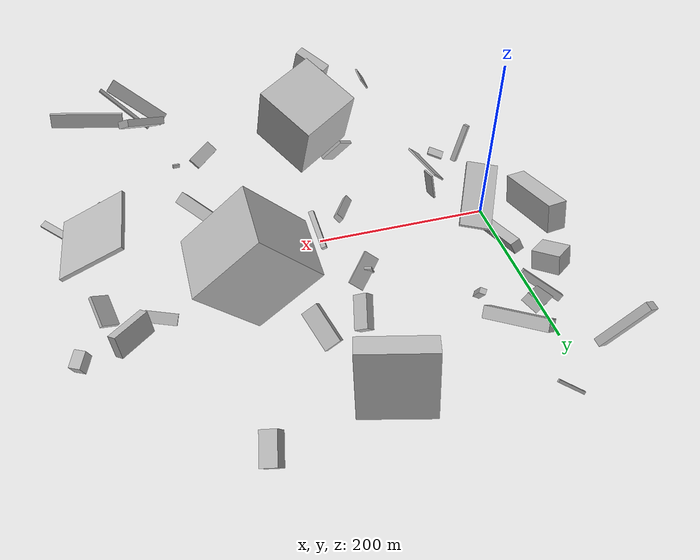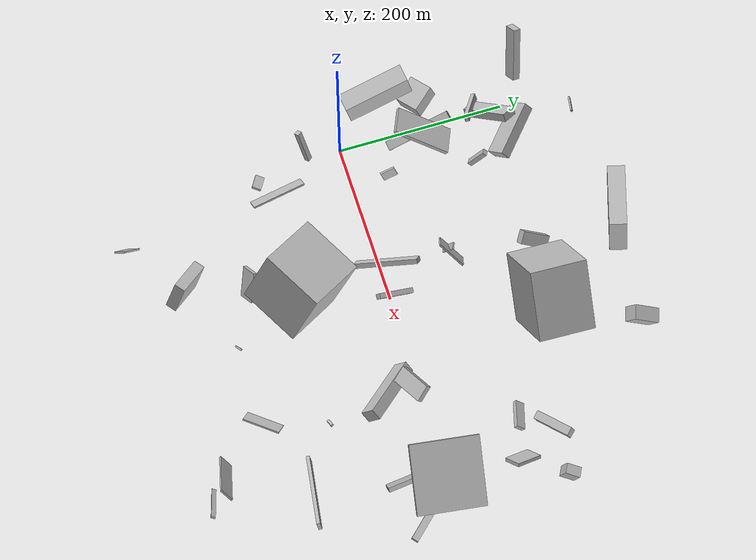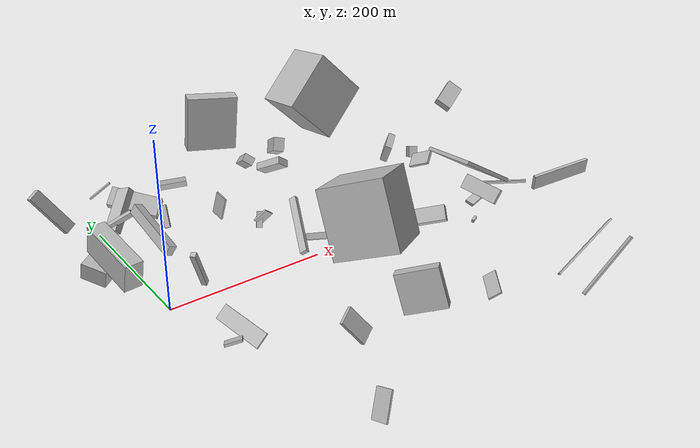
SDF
<sdf version="1.6">
 <world name="default">
  <scene>
   <sky><clouds><speed>12</speed></clouds></sky>
   <ambient>0.4 0.4 0.4 1</ambient>
   <background>0.7 0.7 0.7 1</background>
   <shadows>1</shadows>
  </scene>
  <gravity>0 0 -9.8066</gravity>
  <magnetic_field>6e-06 2.3e-05 -4.2e-05</magnetic_field>
  <physics default="0" name="default_physics" type="ode">
   <ode>
    <solver>
     <type>quick</type>
     <iters>10</iters>
     <sor>1.0</sor>
     <use_dynamic_moi_rescaling>0</use_dynamic_moi_rescaling>
    </solver>
    <constraints>
     <cfm>0</cfm>
     <erp>0.2</erp>
     <contact_max_correcting_vel>100</contact_max_correcting_vel>
     <contact_surface_layer>0.001</contact_surface_layer>
    </constraints>
   </ode>
   <max_step_size>0.004</max_step_size>
   <real_time_factor>1</real_time_factor>
   <real_time_update_rate>250</real_time_update_rate>
  </physics>
  <light name="sun" type="directional">
   <pose>0 0 10 0 0 0</pose>
   <diffuse>0.8 0.8 0.8 1</diffuse>
   <specular>0.2 0.2 0.2 1</specular>
   <attenuation>
    <range>1000</range>
    <constant>0.9</constant>
    <linear>0.01</linear>
    <quadratic>0.001</quadratic>
   </attenuation>
   <direction>-0.5 0.1 -0.9</direction>
  </light>
  <model name="building_1">
   <static>0</static>
   <pose>211.83509465586732 -188.12148826818972 20.800096740713983 1.718569757631835 1.211694147914799 2.4032641904682697</pose>
   <link name="link">
    <gravity>0</gravity>
    <pose>0 0 4.0 0 0 0</pose>
    <collision name="collision"><geometry><box><size>5 2 8</size></box></geometry></collision>
    <visual name="visual">
     <cast_shadows>0</cast_shadows>
     <geometry><box><size>5 2 8</size></box></geometry>
     <material>
      <script>
       <uri>model://HANNAS_wall/materials/scripts</uri>
       <uri>model://HANNAS_wall/materials/textures</uri>
       <name>vrc/HANNAS_wall</name>
      </script>
     </material>
    </visual>
   </link>
  </model>
  <model name="building_2">
   <static>0</static>
   <pose>234.80237400220707 164.78939845435656 53.92079740940968 2.462213911589305 -0.7776903398706622 0.9043381538701816</pose>
   <link name="link">
    <gravity>0</gravity>
    <pose>0 0 9.0 0 0 0</pose>
    <collision name="collision"><geometry><box><size>10 42 18</size></box></geometry></collision>
    <visual name="visual">
     <cast_shadows>0</cast_shadows>
     <geometry><box><size>10 42 18</size></box></geometry>
     <material>
      <script>
       <uri>model://HANNAS_wall/materials/scripts</uri>
       <uri>model://HANNAS_wall/materials/textures</uri>
       <name>vrc/HANNAS_wall</name>
      </script>
     </material>
    </visual>
   </link>
  </model>
  <model name="building_3">
   <static>0</static>
   <pose>341.77539701507374 -116.71835752920873 53.05635060884733 1.330306810678568 -0.12214779300974828 1.93714463204374</pose>
   <link name="link">
    <gravity>0</gravity>
    <pose>0 0 4.0 0 0 0</pose>
    <collision name="collision"><geometry><box><size>3 4 8</size></box></geometry></collision>
    <visual name="visual">
     <cast_shadows>0</cast_shadows>
     <geometry><box><size>3 4 8</size></box></geometry>
     <material>
      <script>
       <uri>model://HANNAS_wall/materials/scripts</uri>
       <uri>model://HANNAS_wall/materials/textures</uri>
       <name>vrc/HANNAS_wall</name>
      </script>
     </material>
    </visual>
   </link>
  </model>
  <model name="building_4">
   <static>0</static>
   <pose>32.333371117048024 275.0391424913804 25.68430537030435 2.6780549057812904 0.5984060693380213 2.8780264542740563</pose>
   <link name="link">
    <gravity>0</gravity>
    <pose>0 0 1.5 0 0 0</pose>
    <collision name="collision"><geometry><box><size>34 2 3</size></box></geometry></collision>
    <visual name="visual">
     <cast_shadows>0</cast_shadows>
     <geometry><box><size>34 2 3</size></box></geometry>
     <material>
      <script>
       <uri>model://HANNAS_wall/materials/scripts</uri>
       <uri>model://HANNAS_wall/materials/textures</uri>
       <name>vrc/HANNAS_wall</name>
      </script>
     </material>
    </visual>
   </link>
  </model>
  <model name="building_5">
   <static>0</static>
   <pose>199.49956365312397 155.68651916010558 71.8265504030798 2.317830625721731 0.7570839382661885 -2.8142826680552564</pose>
   <link name="link">
    <gravity>0</gravity>
    <pose>0 0 17.0 0 0 0</pose>
    <collision name="collision"><geometry><box><size>11 15 34</size></box></geometry></collision>
    <visual name="visual">
     <cast_shadows>0</cast_shadows>
     <geometry><box><size>11 15 34</size></box></geometry>
     <material>
      <script>
       <uri>model://HANNAS_wall/materials/scripts</uri>
       <uri>model://HANNAS_wall/materials/textures</uri>
       <name>vrc/HANNAS_wall</name>
      </script>
     </material>
    </visual>
   </link>
  </model>
  <model name="building_6">
   <static>0</static>
   <pose>434.08217490199263 137.46587995779066 48.29822114553718 -1.6569459412901066 -0.3010656879125149 2.3268298640024043</pose>
   <link name="link">
    <gravity>0</gravity>
    <pose>0 0 21.5 0 0 0</pose>
    <collision name="collision"><geometry><box><size>10 24 43</size></box></geometry></collision>
    <visual name="visual">
     <cast_shadows>0</cast_shadows>
     <geometry><box><size>10 24 43</size></box></geometry>
     <material>
      <script>
       <uri>model://HANNAS_wall/materials/scripts</uri>
       <uri>model://HANNAS_wall/materials/textures</uri>
       <name>vrc/HANNAS_wall</name>
      </script>
     </material>
    </visual>
   </link>
  </model>
  <model name="building_7">
   <static>0</static>
   <pose>274.420622655176 149.70831146967672 116.23090418437597 -0.14218445648207004 0.7519957077774505 -0.09363521115893546</pose>
   <link name="link">
    <gravity>0</gravity>
    <pose>0 0 40.0 0 0 0</pose>
    <collision name="collision"><geometry><box><size>80 65 80</size></box></geometry></collision>
    <visual name="visual">
     <cast_shadows>0</cast_shadows>
     <geometry><box><size>80 65 80</size></box></geometry>
     <material>
      <script>
       <uri>model://HANNAS_wall/materials/scripts</uri>
       <uri>model://HANNAS_wall/materials/textures</uri>
       <name>vrc/HANNAS_wall</name>
      </script>
     </material>
    </visual>
   </link>
  </model>
  <model name="building_8">
   <static>0</static>
   <pose>-34.328476402679115 51.59412894892063 70.20308342258983 -3.121896601542906 -0.20296781385643453 1.6864225873567924</pose>
   <link name="link">
    <gravity>0</gravity>
    <pose>0 0 17.0 0 0 0</pose>
    <collision name="collision"><geometry><box><size>80 22 34</size></box></geometry></collision>
    <visual name="visual">
     <cast_shadows>0</cast_shadows>
     <geometry><box><size>80 22 34</size></box></geometry>
     <material>
      <script>
       <uri>model://HANNAS_wall/materials/scripts</uri>
       <uri>model://HANNAS_wall/materials/textures</uri>
       <name>vrc/HANNAS_wall</name>
      </script>
     </material>
    </visual>
   </link>
  </model>
  <model name="building_9">
   <static>0</static>
   <pose>181.0722514932964 79.79425615290168 31.046599556770524 -2.4199227432310715 0.5819782091448179 0.7197459468379107</pose>
   <link name="link">
    <gravity>0</gravity>
    <pose>0 0 9.5 0 0 0</pose>
    <collision name="collision"><geometry><box><size>38 2 19</size></box></geometry></collision>
    <visual name="visual">
     <cast_shadows>0</cast_shadows>
     <geometry><box><size>38 2 19</size></box></geometry>
     <material>
      <script>
       <uri>model://HANNAS_wall/materials/scripts</uri>
       <uri>model://HANNAS_wall/materials/textures</uri>
       <name>vrc/HANNAS_wall</name>
      </script>
     </material>
    </visual>
   </link>
  </model>
  <model name="building_10">
   <static>0</static>
   <pose>239.48999391752747 258.00621602477725 87.11358322419078 1.5100823951984188 0.08246639606584256 -1.873167391303168</pose>
   <link name="link">
    <gravity>0</gravity>
    <pose>0 0 35.5 0 0 0</pose>
    <collision name="collision"><geometry><box><size>20 80 71</size></box></geometry></collision>
    <visual name="visual">
     <cast_shadows>0</cast_shadows>
     <geometry><box><size>20 80 71</size></box></geometry>
     <material>
      <script>
       <uri>model://HANNAS_wall/materials/scripts</uri>
       <uri>model://HANNAS_wall/materials/textures</uri>
       <name>vrc/HANNAS_wall</name>
      </script>
     </material>
    </visual>
   </link>
  </model>
  <model name="building_11">
   <static>0</static>
   <pose>86.89895705027148 25.51184188530384 85.88333165499697 -0.4255661570825047 -1.323496827098687 -1.0420962873601276</pose>
   <link name="link">
    <gravity>0</gravity>
    <pose>0 0 8.5 0 0 0</pose>
    <collision name="collision"><geometry><box><size>27 2 17</size></box></geometry></collision>
    <visual name="visual">
     <cast_shadows>0</cast_shadows>
     <geometry><box><size>27 2 17</size></box></geometry>
     <material>
      <script>
       <uri>model://HANNAS_wall/materials/scripts</uri>
       <uri>model://HANNAS_wall/materials/textures</uri>
       <name>vrc/HANNAS_wall</name>
      </script>
     </material>
    </visual>
   </link>
  </model>
  <model name="building_12">
   <static>0</static>
   <pose>-46.192846115712406 117.67783680504236 17.13693045531548 2.6090554370318157 1.2784223373500287 1.6919858048443226</pose>
   <link name="link">
    <gravity>0</gravity>
    <pose>0 0 16.0 0 0 0</pose>
    <collision name="collision"><geometry><box><size>23 29 32</size></box></geometry></collision>
    <visual name="visual">
     <cast_shadows>0</cast_shadows>
     <geometry><box><size>23 29 32</size></box></geometry>
     <material>
      <script>
       <uri>model://HANNAS_wall/materials/scripts</uri>
       <uri>model://HANNAS_wall/materials/textures</uri>
       <name>vrc/HANNAS_wall</name>
      </script>
     </material>
    </visual>
   </link>
  </model>
  <model name="building_13">
   <static>0</static>
   <pose>21.04787603662203 -101.28689144103191 13.347558112208695 1.2896284914344387 -0.26449627644728013 -0.4981593179083564</pose>
   <link name="link">
    <gravity>0</gravity>
    <pose>0 0 5.5 0 0 0</pose>
    <collision name="collision"><geometry><box><size>19 3 11</size></box></geometry></collision>
    <visual name="visual">
     <cast_shadows>0</cast_shadows>
     <geometry><box><size>19 3 11</size></box></geometry>
     <material>
      <script>
       <uri>model://HANNAS_wall/materials/scripts</uri>
       <uri>model://HANNAS_wall/materials/textures</uri>
       <name>vrc/HANNAS_wall</name>
      </script>
     </material>
    </visual>
   </link>
  </model>
  <model name="building_14">
   <static>0</static>
   <pose>29.347209644425803 50.544472300632975 39.56397762175509 0.8834882533307634 1.0686296173164236 2.596280416809086</pose>
   <link name="link">
    <gravity>0</gravity>
    <pose>0 0 40.0 0 0 0</pose>
    <collision name="collision"><geometry><box><size>13 11 80</size></box></geometry></collision>
    <visual name="visual">
     <cast_shadows>0</cast_shadows>
     <geometry><box><size>13 11 80</size></box></geometry>
     <material>
      <script>
       <uri>model://HANNAS_wall/materials/scripts</uri>
       <uri>model://HANNAS_wall/materials/textures</uri>
       <name>vrc/HANNAS_wall</name>
      </script>
     </material>
    </visual>
   </link>
  </model>
  <model name="building_15">
   <static>0</static>
   <pose>202.69092912412384 2.413407660275681 19.42432674832134 0.48421519403008223 -0.34386689150334065 3.0721616998070744</pose>
   <link name="link">
    <gravity>0</gravity>
    <pose>0 0 4.0 0 0 0</pose>
    <collision name="collision"><geometry><box><size>6 46 8</size></box></geometry></collision>
    <visual name="visual">
     <cast_shadows>0</cast_shadows>
     <geometry><box><size>6 46 8</size></box></geometry>
     <material>
      <script>
       <uri>model://HANNAS_wall/materials/scripts</uri>
       <uri>model://HANNAS_wall/materials/textures</uri>
       <name>vrc/HANNAS_wall</name>
      </script>
     </material>
    </visual>
   </link>
  </model>
  <model name="building_16">
   <static>0</static>
   <pose>322.84648781972226 -35.29411744718839 38.17293922593068 2.468730497043652 -0.281682167188696 -0.809478724981885</pose>
   <link name="link">
    <gravity>0</gravity>
    <pose>0 0 9.5 0 0 0</pose>
    <collision name="collision"><geometry><box><size>80 14 19</size></box></geometry></collision>
    <visual name="visual">
     <cast_shadows>0</cast_shadows>
     <geometry><box><size>80 14 19</size></box></geometry>
     <material>
      <script>
       <uri>model://HANNAS_wall/materials/scripts</uri>
       <uri>model://HANNAS_wall/materials/textures</uri>
       <name>vrc/HANNAS_wall</name>
      </script>
     </material>
    </visual>
   </link>
  </model>
  <model name="building_17">
   <static>0</static>
   <pose>71.24111922285906 149.95639512187734 27.6721881899729 -0.3943312881999136 -0.9567348629258922 1.3570314581930667</pose>
   <link name="link">
    <gravity>0</gravity>
    <pose>0 0 3.0 0 0 0</pose>
    <collision name="collision"><geometry><box><size>29 7 6</size></box></geometry></collision>
    <visual name="visual">
     <cast_shadows>0</cast_shadows>
     <geometry><box><size>29 7 6</size></box></geometry>
     <material>
      <script>
       <uri>model://HANNAS_wall/materials/scripts</uri>
       <uri>model://HANNAS_wall/materials/textures</uri>
       <name>vrc/HANNAS_wall</name>
      </script>
     </material>
    </visual>
   </link>
  </model>
  <model name="building_18">
   <static>0</static>
   <pose>138.96781363739788 -211.6892133074876 82.96463509724086 1.2403536483466258 0.16280436606518386 0.6936798854298448</pose>
   <link name="link">
    <gravity>0</gravity>
    <pose>0 0 21.5 0 0 0</pose>
    <collision name="collision"><geometry><box><size>13 41 43</size></box></geometry></collision>
    <visual name="visual">
     <cast_shadows>0</cast_shadows>
     <geometry><box><size>13 41 43</size></box></geometry>
     <material>
      <script>
       <uri>model://HANNAS_wall/materials/scripts</uri>
       <uri>model://HANNAS_wall/materials/textures</uri>
       <name>vrc/HANNAS_wall</name>
      </script>
     </material>
    </visual>
   </link>
  </model>
  <model name="building_19">
   <static>0</static>
   <pose>159.83279928347687 -121.72645733542372 112.43484729288713 2.082656512462512 -1.1767746794497334 1.6325245232747774</pose>
   <link name="link">
    <gravity>0</gravity>
    <pose>0 0 37.5 0 0 0</pose>
    <collision name="collision"><geometry><box><size>80 75 75</size></box></geometry></collision>
    <visual name="visual">
     <cast_shadows>0</cast_shadows>
     <geometry><box><size>80 75 75</size></box></geometry>
     <material>
      <script>
       <uri>model://HANNAS_wall/materials/scripts</uri>
       <uri>model://HANNAS_wall/materials/textures</uri>
       <name>vrc/HANNAS_wall</name>
      </script>
     </material>
    </visual>
   </link>
  </model>
  <model name="building_20">
   <static>0</static>
   <pose>66.08185906298172 -275.9490569206119 32.3147454823486 0.6333188181223542 0.9231308915776146 -2.5022285020430988</pose>
   <link name="link">
    <gravity>0</gravity>
    <pose>0 0 1.0 0 0 0</pose>
    <collision name="collision"><geometry><box><size>29 19 2</size></box></geometry></collision>
    <visual name="visual">
     <cast_shadows>0</cast_shadows>
     <geometry><box><size>29 19 2</size></box></geometry>
     <material>
      <script>
       <uri>model://HANNAS_wall/materials/scripts</uri>
       <uri>model://HANNAS_wall/materials/textures</uri>
       <name>vrc/HANNAS_wall</name>
      </script>
     </material>
    </visual>
   </link>
  </model>
  <model name="building_21">
   <static>0</static>
   <pose>435.512153301948 -161.89601277875929 105.83971465665672 -1.454672528340893 -0.075752305100025 -0.14458742294338603</pose>
   <link name="link">
    <gravity>0</gravity>
    <pose>0 0 2.0 0 0 0</pose>
    <collision name="collision"><geometry><box><size>80 17 4</size></box></geometry></collision>
    <visual name="visual">
     <cast_shadows>0</cast_shadows>
     <geometry><box><size>80 17 4</size></box></geometry>
     <material>
      <script>
       <uri>model://HANNAS_wall/materials/scripts</uri>
       <uri>model://HANNAS_wall/materials/textures</uri>
       <name>vrc/HANNAS_wall</name>
      </script>
     </material>
    </visual>
   </link>
  </model>
  <model name="building_22">
   <static>0</static>
   <pose>16.755843127487054 -50.30728033604264 71.31984135569613 -1.6529932212902911 -0.35509957225501976 0.6803089918200894</pose>
   <link name="link">
    <gravity>0</gravity>
    <pose>0 0 3.0 0 0 0</pose>
    <collision name="collision"><geometry><box><size>6 46 6</size></box></geometry></collision>
    <visual name="visual">
     <cast_shadows>0</cast_shadows>
     <geometry><box><size>6 46 6</size></box></geometry>
     <material>
      <script>
       <uri>model://HANNAS_wall/materials/scripts</uri>
       <uri>model://HANNAS_wall/materials/textures</uri>
       <name>vrc/HANNAS_wall</name>
      </script>
     </material>
    </visual>
   </link>
  </model>
  <model name="building_23">
   <static>0</static>
   <pose>302.38111074100397 -179.75034528123692 7.965016157606648 0.9398302659688144 -0.019967656200733767 0.8866075359218762</pose>
   <link name="link">
    <gravity>0</gravity>
    <pose>0 0 8.0 0 0 0</pose>
    <collision name="collision"><geometry><box><size>44 2 16</size></box></geometry></collision>
    <visual name="visual">
     <cast_shadows>0</cast_shadows>
     <geometry><box><size>44 2 16</size></box></geometry>
     <material>
      <script>
       <uri>model://HANNAS_wall/materials/scripts</uri>
       <uri>model://HANNAS_wall/materials/textures</uri>
       <name>vrc/HANNAS_wall</name>
      </script>
     </material>
    </visual>
   </link>
  </model>
  <model name="building_24">
   <static>0</static>
   <pose>447.0619530766014 -11.73320498308987 32.433403920001076 -1.0829770079596526 1.2957883835320363 -1.8960973042229483</pose>
   <link name="link">
    <gravity>0</gravity>
    <pose>0 0 38.0 0 0 0</pose>
    <collision name="collision"><geometry><box><size>3 8 76</size></box></geometry></collision>
    <visual name="visual">
     <cast_shadows>0</cast_shadows>
     <geometry><box><size>3 8 76</size></box></geometry>
     <material>
      <script>
       <uri>model://HANNAS_wall/materials/scripts</uri>
       <uri>model://HANNAS_wall/materials/textures</uri>
       <name>vrc/HANNAS_wall</name>
      </script>
     </material>
    </visual>
   </link>
  </model>
  <model name="building_25">
   <static>0</static>
   <pose>429.04597882476725 -48.91855937367036 44.29611155028419 -2.1313893349846835 0.0702182002502703 -1.4871561337977943</pose>
   <link name="link">
    <gravity>0</gravity>
    <pose>0 0 2.5 0 0 0</pose>
    <collision name="collision"><geometry><box><size>55 20 5</size></box></geometry></collision>
    <visual name="visual">
     <cast_shadows>0</cast_shadows>
     <geometry><box><size>55 20 5</size></box></geometry>
     <material>
      <script>
       <uri>model://HANNAS_wall/materials/scripts</uri>
       <uri>model://HANNAS_wall/materials/textures</uri>
       <name>vrc/HANNAS_wall</name>
      </script>
     </material>
    </visual>
   </link>
  </model>
  <model name="building_26">
   <static>0</static>
   <pose>466.1944518994228 118.8144575594521 29.092904337486033 1.9661760357144618 -0.029713998100183492 2.6496832258925993</pose>
   <link name="link">
    <gravity>0</gravity>
    <pose>0 0 9.0 0 0 0</pose>
    <collision name="collision"><geometry><box><size>12 16 18</size></box></geometry></collision>
    <visual name="visual">
     <cast_shadows>0</cast_shadows>
     <geometry><box><size>12 16 18</size></box></geometry>
     <material>
      <script>
       <uri>model://HANNAS_wall/materials/scripts</uri>
       <uri>model://HANNAS_wall/materials/textures</uri>
       <name>vrc/HANNAS_wall</name>
      </script>
     </material>
    </visual>
   </link>
  </model>
  <model name="building_27">
   <static>0</static>
   <pose>437.9674115163174 -26.765160375659217 20.869765631830226 -1.8362898884201577 0.22839703908871667 -2.998471066718008</pose>
   <link name="link">
    <gravity>0</gravity>
    <pose>0 0 6.0 0 0 0</pose>
    <collision name="collision"><geometry><box><size>24 4 12</size></box></geometry></collision>
    <visual name="visual">
     <cast_shadows>0</cast_shadows>
     <geometry><box><size>24 4 12</size></box></geometry>
     <material>
      <script>
       <uri>model://HANNAS_wall/materials/scripts</uri>
       <uri>model://HANNAS_wall/materials/textures</uri>
       <name>vrc/HANNAS_wall</name>
      </script>
     </material>
    </visual>
   </link>
  </model>
  <model name="building_28">
   <static>0</static>
   <pose>126.8625591733284 -146.6605548966384 25.075777443932783 2.6172846902536056 0.4573624178406294 1.7564089781586765</pose>
   <link name="link">
    <gravity>0</gravity>
    <pose>0 0 19.0 0 0 0</pose>
    <collision name="collision"><geometry><box><size>4 21 38</size></box></geometry></collision>
    <visual name="visual">
     <cast_shadows>0</cast_shadows>
     <geometry><box><size>4 21 38</size></box></geometry>
     <material>
      <script>
       <uri>model://HANNAS_wall/materials/scripts</uri>
       <uri>model://HANNAS_wall/materials/textures</uri>
       <name>vrc/HANNAS_wall</name>
      </script>
     </material>
    </visual>
   </link>
  </model>
  <model name="building_29">
   <static>0</static>
   <pose>396.068709382218 -262.52237429662364 46.16666670684935 1.225578049336167 -0.8474520839373084 -0.2229625520671296</pose>
   <link name="link">
    <gravity>0</gravity>
    <pose>0 0 2.5 0 0 0</pose>
    <collision name="collision"><geometry><box><size>80 2 5</size></box></geometry></collision>
    <visual name="visual">
     <cast_shadows>0</cast_shadows>
     <geometry><box><size>80 2 5</size></box></geometry>
     <material>
      <script>
       <uri>model://HANNAS_wall/materials/scripts</uri>
       <uri>model://HANNAS_wall/materials/textures</uri>
       <name>vrc/HANNAS_wall</name>
      </script>
     </material>
    </visual>
   </link>
  </model>
  <model name="building_30">
   <static>0</static>
   <pose>441.4989442060214 79.08550018686107 38.946927939434204 2.591082594587035 -0.6036463974775729 0.5732321256401331</pose>
   <link name="link">
    <gravity>0</gravity>
    <pose>0 0 2.0 0 0 0</pose>
    <collision name="collision"><geometry><box><size>22 33 4</size></box></geometry></collision>
    <visual name="visual">
     <cast_shadows>0</cast_shadows>
     <geometry><box><size>22 33 4</size></box></geometry>
     <material>
      <script>
       <uri>model://HANNAS_wall/materials/scripts</uri>
       <uri>model://HANNAS_wall/materials/textures</uri>
       <name>vrc/HANNAS_wall</name>
      </script>
     </material>
    </visual>
   </link>
  </model>
  <model name="building_31">
   <static>0</static>
   <pose>25.73540280579789 170.23947846184123 41.9991625797291 2.081394597267653 -0.889098594475463 -2.9976129007846293</pose>
   <link name="link">
    <gravity>0</gravity>
    <pose>0 0 9.5 0 0 0</pose>
    <collision name="collision"><geometry><box><size>10 62 19</size></box></geometry></collision>
    <visual name="visual">
     <cast_shadows>0</cast_shadows>
     <geometry><box><size>10 62 19</size></box></geometry>
     <material>
      <script>
       <uri>model://HANNAS_wall/materials/scripts</uri>
       <uri>model://HANNAS_wall/materials/textures</uri>
       <name>vrc/HANNAS_wall</name>
      </script>
     </material>
    </visual>
   </link>
  </model>
  <model name="building_32">
   <static>0</static>
   <pose>53.91473218707155 85.33886066786802 106.882496415651 2.6133799775774134 -0.09183787442207908 -0.4054767215956753</pose>
   <link name="link">
    <gravity>0</gravity>
    <pose>0 0 2.5 0 0 0</pose>
    <collision name="collision"><geometry><box><size>32 70 5</size></box></geometry></collision>
    <visual name="visual">
     <cast_shadows>0</cast_shadows>
     <geometry><box><size>32 70 5</size></box></geometry>
     <material>
      <script>
       <uri>model://HANNAS_wall/materials/scripts</uri>
       <uri>model://HANNAS_wall/materials/textures</uri>
       <name>vrc/HANNAS_wall</name>
      </script>
     </material>
    </visual>
   </link>
  </model>
  <model name="building_33">
   <static>0</static>
   <pose>38.58087065748222 -87.79609711913471 13.785708262254236 -0.7237252379241974 -0.06115353293215475 1.7272222761047562</pose>
   <link name="link">
    <gravity>0</gravity>
    <pose>0 0 1.0 0 0 0</pose>
    <collision name="collision"><geometry><box><size>65 18 2</size></box></geometry></collision>
    <visual name="visual">
     <cast_shadows>0</cast_shadows>
     <geometry><box><size>65 18 2</size></box></geometry>
     <material>
      <script>
       <uri>model://HANNAS_wall/materials/scripts</uri>
       <uri>model://HANNAS_wall/materials/textures</uri>
       <name>vrc/HANNAS_wall</name>
      </script>
     </material>
    </visual>
   </link>
  </model>
  <model name="building_34">
   <static>0</static>
   <pose>374.3900669909706 -27.880492120749047 175.21632050581428 0.5911973481641073 -0.3285941127829142 0.4247421500360017</pose>
   <link name="link">
    <gravity>0</gravity>
    <pose>0 0 3.5 0 0 0</pose>
    <collision name="collision"><geometry><box><size>40 19 7</size></box></geometry></collision>
    <visual name="visual">
     <cast_shadows>0</cast_shadows>
     <geometry><box><size>40 19 7</size></box></geometry>
     <material>
      <script>
       <uri>model://HANNAS_wall/materials/scripts</uri>
       <uri>model://HANNAS_wall/materials/textures</uri>
       <name>vrc/HANNAS_wall</name>
      </script>
     </material>
    </visual>
   </link>
  </model>
  <model name="building_35">
   <static>0</static>
   <pose>57.07332700753149 200.22889795966077 43.55490287703706 -2.311417307397439 -0.19904813537044502 2.393781248964621</pose>
   <link name="link">
    <gravity>0</gravity>
    <pose>0 0 12.5 0 0 0</pose>
    <collision name="collision"><geometry><box><size>66 13 25</size></box></geometry></collision>
    <visual name="visual">
     <cast_shadows>0</cast_shadows>
     <geometry><box><size>66 13 25</size></box></geometry>
     <material>
      <script>
       <uri>model://HANNAS_wall/materials/scripts</uri>
       <uri>model://HANNAS_wall/materials/textures</uri>
       <name>vrc/HANNAS_wall</name>
      </script>
     </material>
    </visual>
   </link>
  </model>
  <model name="building_36">
   <static>0</static>
   <pose>-64.89879188247353 235.1304042961198 63.72921182567052 2.801140683795062 -0.4940020383967565 0.35948328951487674</pose>
   <link name="link">
    <gravity>0</gravity>
    <pose>0 0 33.0 0 0 0</pose>
    <collision name="collision"><geometry><box><size>16 9 66</size></box></geometry></collision>
    <visual name="visual">
     <cast_shadows>0</cast_shadows>
     <geometry><box><size>16 9 66</size></box></geometry>
     <material>
      <script>
       <uri>model://HANNAS_wall/materials/scripts</uri>
       <uri>model://HANNAS_wall/materials/textures</uri>
       <name>vrc/HANNAS_wall</name>
      </script>
     </material>
    </visual>
   </link>
  </model>
  <model name="building_37">
   <static>0</static>
   <pose>4.733777188483359 158.32380796078175 38.051223060072445 -2.678751172787777 -0.538683663652296 -0.5301849422743659</pose>
   <link name="link">
    <gravity>0</gravity>
    <pose>0 0 4.0 0 0 0</pose>
    <collision name="collision"><geometry><box><size>51 5 8</size></box></geometry></collision>
    <visual name="visual">
     <cast_shadows>0</cast_shadows>
     <geometry><box><size>51 5 8</size></box></geometry>
     <material>
      <script>
       <uri>model://HANNAS_wall/materials/scripts</uri>
       <uri>model://HANNAS_wall/materials/textures</uri>
       <name>vrc/HANNAS_wall</name>
      </script>
     </material>
    </visual>
   </link>
  </model>
  <model name="building_38">
   <static>0</static>
   <pose>391.3255809018561 96.68693072395786 22.37489311355526 -0.8813847129409444 0.15154446068719465 2.857163110011402</pose>
   <link name="link">
    <gravity>0</gravity>
    <pose>0 0 6.0 0 0 0</pose>
    <collision name="collision"><geometry><box><size>33 5 12</size></box></geometry></collision>
    <visual name="visual">
     <cast_shadows>0</cast_shadows>
     <geometry><box><size>33 5 12</size></box></geometry>
     <material>
      <script>
       <uri>model://HANNAS_wall/materials/scripts</uri>
       <uri>model://HANNAS_wall/materials/textures</uri>
       <name>vrc/HANNAS_wall</name>
      </script>
     </material>
    </visual>
   </link>
  </model>
  <model name="building_39">
   <static>0</static>
   <pose>164.04377063162832 76.10419536672634 14.762333725851281 0.16094480699170313 0.564585084379903 1.240051625151928</pose>
   <link name="link">
    <gravity>0</gravity>
    <pose>0 0 10.5 0 0 0</pose>
    <collision name="collision"><geometry><box><size>2 8 21</size></box></geometry></collision>
    <visual name="visual">
     <cast_shadows>0</cast_shadows>
     <geometry><box><size>2 8 21</size></box></geometry>
     <material>
      <script>
       <uri>model://HANNAS_wall/materials/scripts</uri>
       <uri>model://HANNAS_wall/materials/textures</uri>
       <name>vrc/HANNAS_wall</name>
      </script>
     </material>
    </visual>
   </link>
  </model>
  <model name="building_40">
   <static>0</static>
   <pose>440.9241532565023 -49.667327919561686 65.4869659517048 1.6954733664473987 -0.5137715528392726 2.978232715963711</pose>
   <link name="link">
    <gravity>0</gravity>
    <pose>0 0 40.0 0 0 0</pose>
    <collision name="collision"><geometry><box><size>80 5 80</size></box></geometry></collision>
    <visual name="visual">
     <cast_shadows>0</cast_shadows>
     <geometry><box><size>80 5 80</size></box></geometry>
     <material>
      <script>
       <uri>model://HANNAS_wall/materials/scripts</uri>
       <uri>model://HANNAS_wall/materials/textures</uri>
       <name>vrc/HANNAS_wall</name>
      </script>
     </material>
    </visual>
   </link>
  </model>
  <model name="building_41">
   <static>0</static>
   <pose>348.69404547786576 -238.3883087048269 39.339250688815056 -0.6130422544928492 -0.5988369526021181 -2.4545845423094494</pose>
   <link name="link">
    <gravity>0</gravity>
    <pose>0 0 40.0 0 0 0</pose>
    <collision name="collision"><geometry><box><size>17 2 80</size></box></geometry></collision>
    <visual name="visual">
     <cast_shadows>0</cast_shadows>
     <geometry><box><size>17 2 80</size></box></geometry>
     <material>
      <script>
       <uri>model://HANNAS_wall/materials/scripts</uri>
       <uri>model://HANNAS_wall/materials/textures</uri>
       <name>vrc/HANNAS_wall</name>
      </script>
     </material>
    </visual>
   </link>
  </model>
  <model name="building_42">
   <static>0</static>
   <pose>322.36872527842786 263.0397500424966 23.785316007033348 1.136139162974195 1.0073760511827339 -2.298609366644673</pose>
   <link name="link">
    <gravity>0</gravity>
    <pose>0 0 8.5 0 0 0</pose>
    <collision name="collision"><geometry><box><size>21 32 17</size></box></geometry></collision>
    <visual name="visual">
     <cast_shadows>0</cast_shadows>
     <geometry><box><size>21 32 17</size></box></geometry>
     <material>
      <script>
       <uri>model://HANNAS_wall/materials/scripts</uri>
       <uri>model://HANNAS_wall/materials/textures</uri>
       <name>vrc/HANNAS_wall</name>
      </script>
     </material>
    </visual>
   </link>
  </model>
  <model name="building_43">
   <static>0</static>
   <pose>171.8484301392141 6.485429494339186 45.49080928814935 0.6518171226247449 0.7888613351220694 0.06785613843145163</pose>
   <link name="link">
    <gravity>0</gravity>
    <pose>0 0 4.5 0 0 0</pose>
    <collision name="collision"><geometry><box><size>6 80 9</size></box></geometry></collision>
    <visual name="visual">
     <cast_shadows>0</cast_shadows>
     <geometry><box><size>6 80 9</size></box></geometry>
     <material>
      <script>
       <uri>model://HANNAS_wall/materials/scripts</uri>
       <uri>model://HANNAS_wall/materials/textures</uri>
       <name>vrc/HANNAS_wall</name>
      </script>
     </material>
    </visual>
   </link>
  </model>
 </world>
</sdf>
